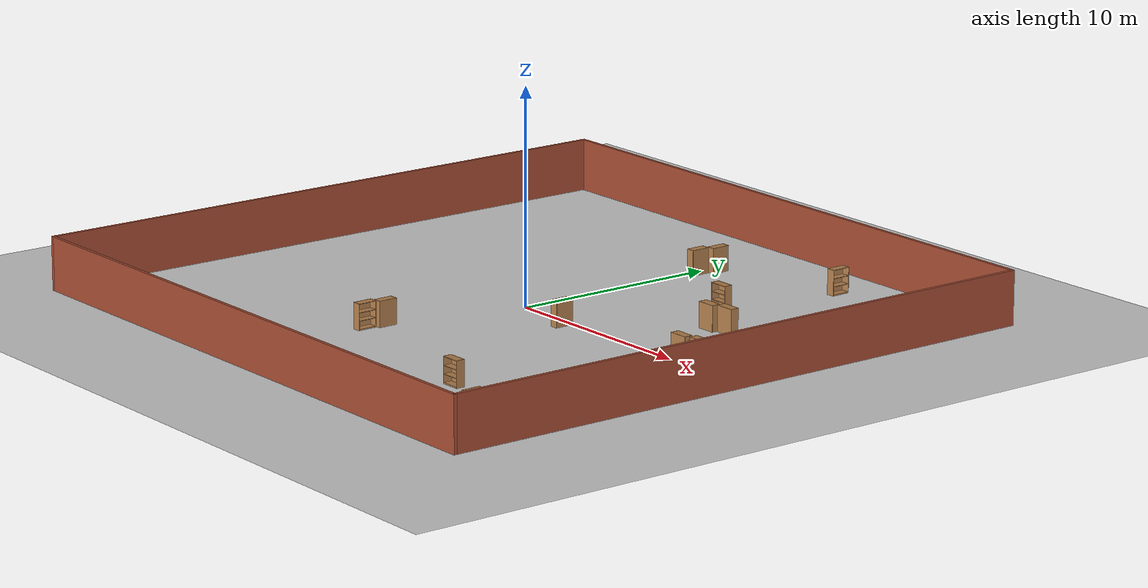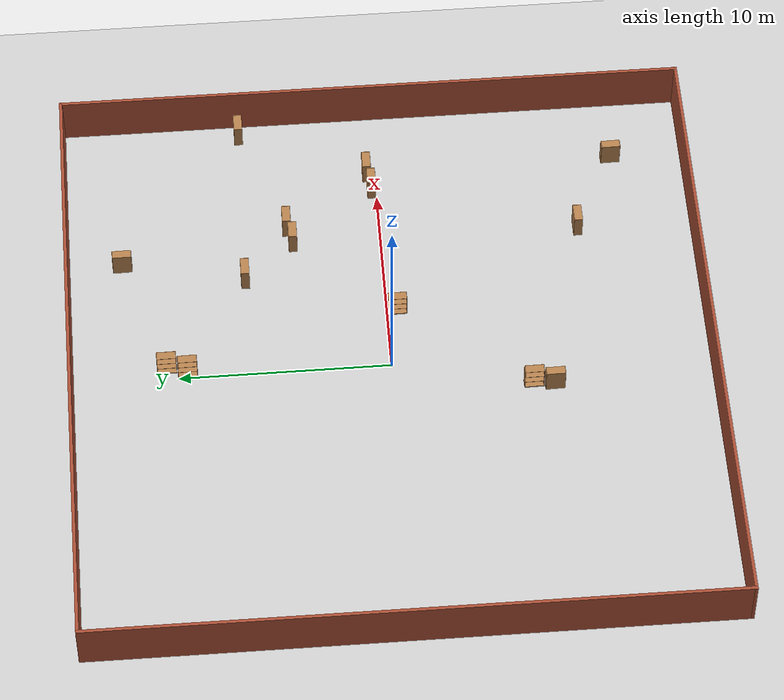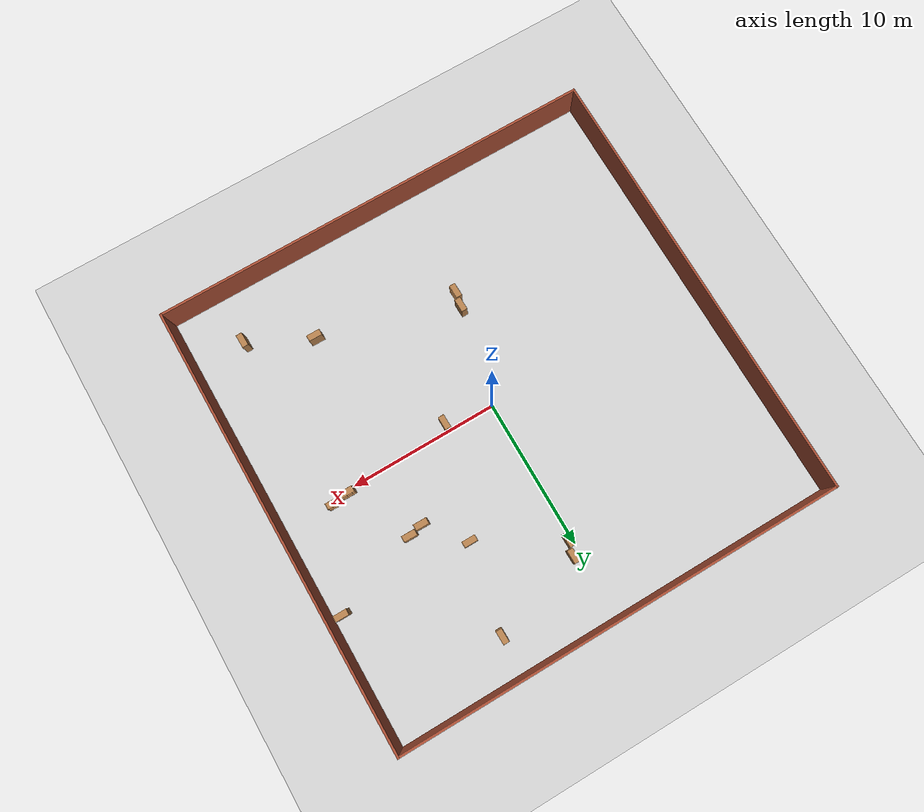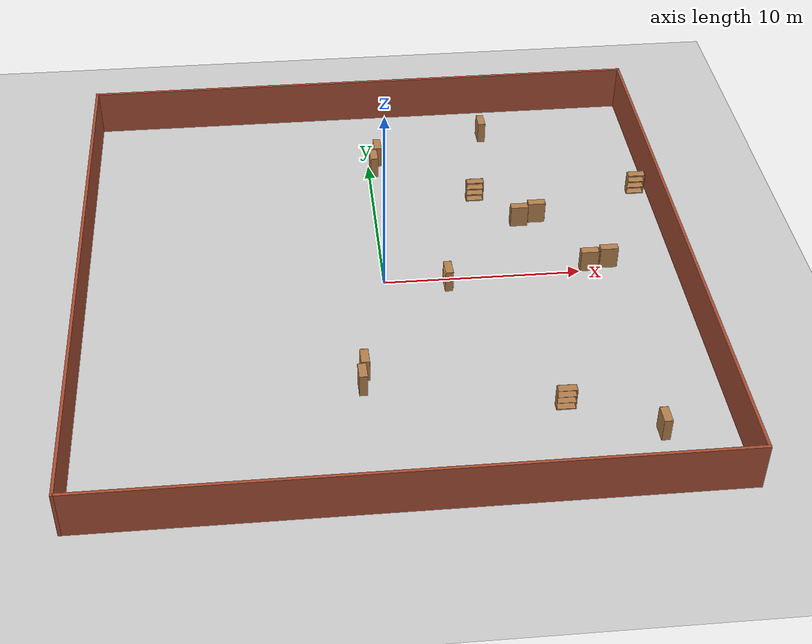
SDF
<sdf version="1.6">
 <world name="default">
  <model name="ground_plane">
   <static>1</static>
   <link name="link">
    <collision name="collision">
     <geometry><plane><normal>0 0 1</normal><size>100 100</size></plane></geometry>
     <surface>
      <contact><collide_bitmask>65535</collide_bitmask></contact>
      <friction><ode><mu>100</mu><mu2>50</mu2></ode></friction>
     </surface>
    </collision>
    <visual name="visual">
     <cast_shadows>0</cast_shadows>
     <geometry><plane><normal>0 0 1</normal><size>100 100</size></plane></geometry>
     <material>
      <script><uri>file://media/materials/scripts/gazebo.material</uri><name>Gazebo/Grey</name></script>
     </material>
    </visual>
   </link>
  </model>
  <model name="30x30env"><static>0</static><pose>32.1206 3.39752 0 0 -0 0</pose></model>
  <model name="30x30_0">
   <link name="Wall_0">
    <collision name="Wall_0_Collision">
     <geometry><box><size>30.15 0.15 2.5</size></box></geometry>
     <pose>0 0 1.25 0 -0 0</pose>
    </collision>
    <visual name="Wall_0_Visual">
     <pose>0 0 1.25 0 -0 0</pose>
     <geometry><box><size>30.15 0.15 2.5</size></box></geometry>
     <material>
      <script><uri>file://media/materials/scripts/gazebo.material</uri><name>Gazebo/Bricks</name></script>
      <ambient>1 1 1 1</ambient>
     </material>
     <meta><layer>0</layer></meta>
    </visual>
    <pose>-15 0 0 0 -0 1.5708</pose>
   </link>
   <link name="Wall_1">
    <collision name="Wall_1_Collision">
     <geometry><box><size>30.15 0.15 2.5</size></box></geometry>
     <pose>0 0 1.25 0 -0 0</pose>
    </collision>
    <visual name="Wall_1_Visual">
     <pose>0 0 1.25 0 -0 0</pose>
     <geometry><box><size>30.15 0.15 2.5</size></box></geometry>
     <material>
      <script><uri>file://media/materials/scripts/gazebo.material</uri><name>Gazebo/Bricks</name></script>
      <ambient>1 1 1 1</ambient>
     </material>
     <meta><layer>0</layer></meta>
    </visual>
    <pose>0 15 0 0 -0 0</pose>
   </link>
   <link name="Wall_2">
    <collision name="Wall_2_Collision">
     <geometry><box><size>30.15 0.15 2.5</size></box></geometry>
     <pose>0 0 1.25 0 -0 0</pose>
    </collision>
    <visual name="Wall_2_Visual">
     <pose>0 0 1.25 0 -0 0</pose>
     <geometry><box><size>30.15 0.15 2.5</size></box></geometry>
     <material>
      <script><uri>file://media/materials/scripts/gazebo.material</uri><name>Gazebo/Bricks</name></script>
      <ambient>1 1 1 1</ambient>
     </material>
     <meta><layer>0</layer></meta>
    </visual>
    <pose>15 0 0 0 -0 -1.5708</pose>
   </link>
   <link name="Wall_3">
    <collision name="Wall_3_Collision">
     <geometry><box><size>30.15 0.15 2.5</size></box></geometry>
     <pose>0 0 1.25 0 -0 0</pose>
    </collision>
    <visual name="Wall_3_Visual">
     <pose>0 0 1.25 0 -0 0</pose>
     <geometry><box><size>30.15 0.15 2.5</size></box></geometry>
     <material>
      <script><uri>file://media/materials/scripts/gazebo.material</uri><name>Gazebo/Bricks</name></script>
      <ambient>1 1 1 1</ambient>
     </material>
     <meta><layer>0</layer></meta>
    </visual>
    <pose>0 -15 0 0 -0 3.14159</pose>
   </link>
   <static>1</static>
  </model>
  <model name="bookshelf_clone_clone_clone_0_clone_0_clone_3_clone">
   <static>1</static>
   <link name="link">
    <inertial><mass>1</mass></inertial>
    <collision name="back">
     <pose>0 0.005 0.6 0 -0 0</pose>
     <geometry><box><size>0.9 0.01 1.2</size></box></geometry>
    </collision>
    <visual name="visual1">
     <pose>0 0.005 0.6 0 -0 0</pose>
     <geometry><box><size>0.9 0.01 1.2</size></box></geometry>
     <material>
      <script><uri>file://media/materials/scripts/gazebo.material</uri><name>Gazebo/Wood</name></script>
     </material>
    </visual>
    <collision name="left_side">
     <pose>0.45 -0.195 0.6 0 -0 0</pose>
     <geometry><box><size>0.02 0.4 1.2</size></box></geometry>
    </collision>
    <visual name="visual2">
     <pose>0.45 -0.195 0.6 0 -0 0</pose>
     <geometry><box><size>0.02 0.4 1.2</size></box></geometry>
     <material>
      <script><uri>file://media/materials/scripts/gazebo.material</uri><name>Gazebo/Wood</name></script>
     </material>
    </visual>
    <collision name="right_side">
     <pose>-0.45 -0.195 0.6 0 -0 0</pose>
     <geometry><box><size>0.02 0.4 1.2</size></box></geometry>
    </collision>
    <visual name="visual3">
     <pose>-0.45 -0.195 0.6 0 -0 0</pose>
     <geometry><box><size>0.02 0.4 1.2</size></box></geometry>
     <material>
      <script><uri>file://media/materials/scripts/gazebo.material</uri><name>Gazebo/Wood</name></script>
     </material>
    </visual>
    <collision name="bottom">
     <pose>0 -0.195 0.03 0 -0 0</pose>
     <geometry><box><size>0.88 0.4 0.06</size></box></geometry>
    </collision>
    <visual name="visual4">
     <pose>0 -0.195 0.03 0 -0 0</pose>
     <geometry><box><size>0.88 0.4 0.06</size></box></geometry>
     <material>
      <script><uri>file://media/materials/scripts/gazebo.material</uri><name>Gazebo/Wood</name></script>
     </material>
    </visual>
    <collision name="top">
     <pose>0 -0.195 1.19 0 -0 0</pose>
     <geometry><box><size>0.88 0.4 0.02</size></box></geometry>
    </collision>
    <visual name="visual5">
     <pose>0 -0.195 1.19 0 -0 0</pose>
     <geometry><box><size>0.88 0.4 0.02</size></box></geometry>
     <material>
      <script><uri>file://media/materials/scripts/gazebo.material</uri><name>Gazebo/Wood</name></script>
     </material>
    </visual>
    <collision name="low_shelf">
     <pose>0 -0.195 0.43 0 -0 0</pose>
     <geometry><box><size>0.88 0.4 0.02</size></box></geometry>
    </collision>
    <visual name="visual6">
     <pose>0 -0.195 0.43 0 -0 0</pose>
     <geometry><box><size>0.88 0.4 0.02</size></box></geometry>
     <material>
      <script><uri>file://media/materials/scripts/gazebo.material</uri><name>Gazebo/Wood</name></script>
     </material>
    </visual>
    <collision name="high_shelf">
     <pose>0 -0.195 0.8 0 -0 0</pose>
     <geometry><box><size>0.88 0.4 0.02</size></box></geometry>
    </collision>
    <visual name="visual7">
     <pose>0 -0.195 0.8 0 -0 0</pose>
     <geometry><box><size>0.88 0.4 0.02</size></box></geometry>
     <material>
      <script><uri>file://media/materials/scripts/gazebo.material</uri><name>Gazebo/Wood</name></script>
     </material>
    </visual>
   </link>
   <pose>14.2814 6.68434 0 0 -0 0</pose>
  </model>
  <model name="bookshelf_clone_clone_clone_0_clone_0_clone_3_clone_0_clone_0">
   <static>1</static>
   <link name="link">
    <inertial><mass>1</mass></inertial>
    <collision name="back">
     <pose>0 0.005 0.6 0 -0 0</pose>
     <geometry><box><size>0.9 0.01 1.2</size></box></geometry>
    </collision>
    <visual name="visual1">
     <pose>0 0.005 0.6 0 -0 0</pose>
     <geometry><box><size>0.9 0.01 1.2</size></box></geometry>
     <material>
      <script><uri>file://media/materials/scripts/gazebo.material</uri><name>Gazebo/Wood</name></script>
     </material>
    </visual>
    <collision name="left_side">
     <pose>0.45 -0.195 0.6 0 -0 0</pose>
     <geometry><box><size>0.02 0.4 1.2</size></box></geometry>
    </collision>
    <visual name="visual2">
     <pose>0.45 -0.195 0.6 0 -0 0</pose>
     <geometry><box><size>0.02 0.4 1.2</size></box></geometry>
     <material>
      <script><uri>file://media/materials/scripts/gazebo.material</uri><name>Gazebo/Wood</name></script>
     </material>
    </visual>
    <collision name="right_side">
     <pose>-0.45 -0.195 0.6 0 -0 0</pose>
     <geometry><box><size>0.02 0.4 1.2</size></box></geometry>
    </collision>
    <visual name="visual3">
     <pose>-0.45 -0.195 0.6 0 -0 0</pose>
     <geometry><box><size>0.02 0.4 1.2</size></box></geometry>
     <material>
      <script><uri>file://media/materials/scripts/gazebo.material</uri><name>Gazebo/Wood</name></script>
     </material>
    </visual>
    <collision name="bottom">
     <pose>0 -0.195 0.03 0 -0 0</pose>
     <geometry><box><size>0.88 0.4 0.06</size></box></geometry>
    </collision>
    <visual name="visual4">
     <pose>0 -0.195 0.03 0 -0 0</pose>
     <geometry><box><size>0.88 0.4 0.06</size></box></geometry>
     <material>
      <script><uri>file://media/materials/scripts/gazebo.material</uri><name>Gazebo/Wood</name></script>
     </material>
    </visual>
    <collision name="top">
     <pose>0 -0.195 1.19 0 -0 0</pose>
     <geometry><box><size>0.88 0.4 0.02</size></box></geometry>
    </collision>
    <visual name="visual5">
     <pose>0 -0.195 1.19 0 -0 0</pose>
     <geometry><box><size>0.88 0.4 0.02</size></box></geometry>
     <material>
      <script><uri>file://media/materials/scripts/gazebo.material</uri><name>Gazebo/Wood</name></script>
     </material>
    </visual>
    <collision name="low_shelf">
     <pose>0 -0.195 0.43 0 -0 0</pose>
     <geometry><box><size>0.88 0.4 0.02</size></box></geometry>
    </collision>
    <visual name="visual6">
     <pose>0 -0.195 0.43 0 -0 0</pose>
     <geometry><box><size>0.88 0.4 0.02</size></box></geometry>
     <material>
      <script><uri>file://media/materials/scripts/gazebo.material</uri><name>Gazebo/Wood</name></script>
     </material>
    </visual>
    <collision name="high_shelf">
     <pose>0 -0.195 0.8 0 -0 0</pose>
     <geometry><box><size>0.88 0.4 0.02</size></box></geometry>
    </collision>
    <visual name="visual7">
     <pose>0 -0.195 0.8 0 -0 0</pose>
     <geometry><box><size>0.88 0.4 0.02</size></box></geometry>
     <material>
      <script><uri>file://media/materials/scripts/gazebo.material</uri><name>Gazebo/Wood</name></script>
     </material>
    </visual>
   </link>
   <pose>6.42885 12.4053 0 0 -0 1.59147</pose>
  </model>
  <model name="bookshelf_clone_clone_clone_0_clone_0_clone_3_clone_clone_0">
   <static>1</static>
   <link name="link">
    <inertial><mass>1</mass></inertial>
    <collision name="back">
     <pose>0 0.005 0.6 0 -0 0</pose>
     <geometry><box><size>0.9 0.01 1.2</size></box></geometry>
    </collision>
    <visual name="visual1">
     <pose>0 0.005 0.6 0 -0 0</pose>
     <geometry><box><size>0.9 0.01 1.2</size></box></geometry>
     <material>
      <script><uri>file://media/materials/scripts/gazebo.material</uri><name>Gazebo/Wood</name></script>
     </material>
    </visual>
    <collision name="left_side">
     <pose>0.45 -0.195 0.6 0 -0 0</pose>
     <geometry><box><size>0.02 0.4 1.2</size></box></geometry>
    </collision>
    <visual name="visual2">
     <pose>0.45 -0.195 0.6 0 -0 0</pose>
     <geometry><box><size>0.02 0.4 1.2</size></box></geometry>
     <material>
      <script><uri>file://media/materials/scripts/gazebo.material</uri><name>Gazebo/Wood</name></script>
     </material>
    </visual>
    <collision name="right_side">
     <pose>-0.45 -0.195 0.6 0 -0 0</pose>
     <geometry><box><size>0.02 0.4 1.2</size></box></geometry>
    </collision>
    <visual name="visual3">
     <pose>-0.45 -0.195 0.6 0 -0 0</pose>
     <geometry><box><size>0.02 0.4 1.2</size></box></geometry>
     <material>
      <script><uri>file://media/materials/scripts/gazebo.material</uri><name>Gazebo/Wood</name></script>
     </material>
    </visual>
    <collision name="bottom">
     <pose>0 -0.195 0.03 0 -0 0</pose>
     <geometry><box><size>0.88 0.4 0.06</size></box></geometry>
    </collision>
    <visual name="visual4">
     <pose>0 -0.195 0.03 0 -0 0</pose>
     <geometry><box><size>0.88 0.4 0.06</size></box></geometry>
     <material>
      <script><uri>file://media/materials/scripts/gazebo.material</uri><name>Gazebo/Wood</name></script>
     </material>
    </visual>
    <collision name="top">
     <pose>0 -0.195 1.19 0 -0 0</pose>
     <geometry><box><size>0.88 0.4 0.02</size></box></geometry>
    </collision>
    <visual name="visual5">
     <pose>0 -0.195 1.19 0 -0 0</pose>
     <geometry><box><size>0.88 0.4 0.02</size></box></geometry>
     <material>
      <script><uri>file://media/materials/scripts/gazebo.material</uri><name>Gazebo/Wood</name></script>
     </material>
    </visual>
    <collision name="low_shelf">
     <pose>0 -0.195 0.43 0 -0 0</pose>
     <geometry><box><size>0.88 0.4 0.02</size></box></geometry>
    </collision>
    <visual name="visual6">
     <pose>0 -0.195 0.43 0 -0 0</pose>
     <geometry><box><size>0.88 0.4 0.02</size></box></geometry>
     <material>
      <script><uri>file://media/materials/scripts/gazebo.material</uri><name>Gazebo/Wood</name></script>
     </material>
    </visual>
    <collision name="high_shelf">
     <pose>0 -0.195 0.8 0 -0 0</pose>
     <geometry><box><size>0.88 0.4 0.02</size></box></geometry>
    </collision>
    <visual name="visual7">
     <pose>0 -0.195 0.8 0 -0 0</pose>
     <geometry><box><size>0.88 0.4 0.02</size></box></geometry>
     <material>
      <script><uri>file://media/materials/scripts/gazebo.material</uri><name>Gazebo/Wood</name></script>
     </material>
    </visual>
   </link>
   <pose>5.48865 6.80264 0 0 -0 0</pose>
  </model>
  <model name="bookshelf_clone_clone_clone_0_clone_0_clone_3_clone_clone_1_clone_clone">
   <static>1</static>
   <link name="link">
    <inertial><mass>1</mass></inertial>
    <collision name="back">
     <pose>0 0.005 0.6 0 -0 0</pose>
     <geometry><box><size>0.9 0.01 1.2</size></box></geometry>
    </collision>
    <visual name="visual1">
     <pose>0 0.005 0.6 0 -0 0</pose>
     <geometry><box><size>0.9 0.01 1.2</size></box></geometry>
     <material>
      <script><uri>file://media/materials/scripts/gazebo.material</uri><name>Gazebo/Wood</name></script>
     </material>
    </visual>
    <collision name="left_side">
     <pose>0.45 -0.195 0.6 0 -0 0</pose>
     <geometry><box><size>0.02 0.4 1.2</size></box></geometry>
    </collision>
    <visual name="visual2">
     <pose>0.45 -0.195 0.6 0 -0 0</pose>
     <geometry><box><size>0.02 0.4 1.2</size></box></geometry>
     <material>
      <script><uri>file://media/materials/scripts/gazebo.material</uri><name>Gazebo/Wood</name></script>
     </material>
    </visual>
    <collision name="right_side">
     <pose>-0.45 -0.195 0.6 0 -0 0</pose>
     <geometry><box><size>0.02 0.4 1.2</size></box></geometry>
    </collision>
    <visual name="visual3">
     <pose>-0.45 -0.195 0.6 0 -0 0</pose>
     <geometry><box><size>0.02 0.4 1.2</size></box></geometry>
     <material>
      <script><uri>file://media/materials/scripts/gazebo.material</uri><name>Gazebo/Wood</name></script>
     </material>
    </visual>
    <collision name="bottom">
     <pose>0 -0.195 0.03 0 -0 0</pose>
     <geometry><box><size>0.88 0.4 0.06</size></box></geometry>
    </collision>
    <visual name="visual4">
     <pose>0 -0.195 0.03 0 -0 0</pose>
     <geometry><box><size>0.88 0.4 0.06</size></box></geometry>
     <material>
      <script><uri>file://media/materials/scripts/gazebo.material</uri><name>Gazebo/Wood</name></script>
     </material>
    </visual>
    <collision name="top">
     <pose>0 -0.195 1.19 0 -0 0</pose>
     <geometry><box><size>0.88 0.4 0.02</size></box></geometry>
    </collision>
    <visual name="visual5">
     <pose>0 -0.195 1.19 0 -0 0</pose>
     <geometry><box><size>0.88 0.4 0.02</size></box></geometry>
     <material>
      <script><uri>file://media/materials/scripts/gazebo.material</uri><name>Gazebo/Wood</name></script>
     </material>
    </visual>
    <collision name="low_shelf">
     <pose>0 -0.195 0.43 0 -0 0</pose>
     <geometry><box><size>0.88 0.4 0.02</size></box></geometry>
    </collision>
    <visual name="visual6">
     <pose>0 -0.195 0.43 0 -0 0</pose>
     <geometry><box><size>0.88 0.4 0.02</size></box></geometry>
     <material>
      <script><uri>file://media/materials/scripts/gazebo.material</uri><name>Gazebo/Wood</name></script>
     </material>
    </visual>
    <collision name="high_shelf">
     <pose>0 -0.195 0.8 0 -0 0</pose>
     <geometry><box><size>0.88 0.4 0.02</size></box></geometry>
    </collision>
    <visual name="visual7">
     <pose>0 -0.195 0.8 0 -0 0</pose>
     <geometry><box><size>0.88 0.4 0.02</size></box></geometry>
     <material>
      <script><uri>file://media/materials/scripts/gazebo.material</uri><name>Gazebo/Wood</name></script>
     </material>
    </visual>
   </link>
   <pose>7.51774 4.03008 0 0 -0 3.1368</pose>
  </model>
  <model name="bookshelf_clone_clone_clone_0_clone_0_clone_3_clone_clone_1_clone_clone_clone">
   <static>1</static>
   <link name="link">
    <inertial><mass>1</mass></inertial>
    <collision name="back">
     <pose>0 0.005 0.6 0 -0 0</pose>
     <geometry><box><size>0.9 0.01 1.2</size></box></geometry>
    </collision>
    <visual name="visual1">
     <pose>0 0.005 0.6 0 -0 0</pose>
     <geometry><box><size>0.9 0.01 1.2</size></box></geometry>
     <material>
      <script><uri>file://media/materials/scripts/gazebo.material</uri><name>Gazebo/Wood</name></script>
     </material>
    </visual>
    <collision name="left_side">
     <pose>0.45 -0.195 0.6 0 -0 0</pose>
     <geometry><box><size>0.02 0.4 1.2</size></box></geometry>
    </collision>
    <visual name="visual2">
     <pose>0.45 -0.195 0.6 0 -0 0</pose>
     <geometry><box><size>0.02 0.4 1.2</size></box></geometry>
     <material>
      <script><uri>file://media/materials/scripts/gazebo.material</uri><name>Gazebo/Wood</name></script>
     </material>
    </visual>
    <collision name="right_side">
     <pose>-0.45 -0.195 0.6 0 -0 0</pose>
     <geometry><box><size>0.02 0.4 1.2</size></box></geometry>
    </collision>
    <visual name="visual3">
     <pose>-0.45 -0.195 0.6 0 -0 0</pose>
     <geometry><box><size>0.02 0.4 1.2</size></box></geometry>
     <material>
      <script><uri>file://media/materials/scripts/gazebo.material</uri><name>Gazebo/Wood</name></script>
     </material>
    </visual>
    <collision name="bottom">
     <pose>0 -0.195 0.03 0 -0 0</pose>
     <geometry><box><size>0.88 0.4 0.06</size></box></geometry>
    </collision>
    <visual name="visual4">
     <pose>0 -0.195 0.03 0 -0 0</pose>
     <geometry><box><size>0.88 0.4 0.06</size></box></geometry>
     <material>
      <script><uri>file://media/materials/scripts/gazebo.material</uri><name>Gazebo/Wood</name></script>
     </material>
    </visual>
    <collision name="top">
     <pose>0 -0.195 1.19 0 -0 0</pose>
     <geometry><box><size>0.88 0.4 0.02</size></box></geometry>
    </collision>
    <visual name="visual5">
     <pose>0 -0.195 1.19 0 -0 0</pose>
     <geometry><box><size>0.88 0.4 0.02</size></box></geometry>
     <material>
      <script><uri>file://media/materials/scripts/gazebo.material</uri><name>Gazebo/Wood</name></script>
     </material>
    </visual>
    <collision name="low_shelf">
     <pose>0 -0.195 0.43 0 -0 0</pose>
     <geometry><box><size>0.88 0.4 0.02</size></box></geometry>
    </collision>
    <visual name="visual6">
     <pose>0 -0.195 0.43 0 -0 0</pose>
     <geometry><box><size>0.88 0.4 0.02</size></box></geometry>
     <material>
      <script><uri>file://media/materials/scripts/gazebo.material</uri><name>Gazebo/Wood</name></script>
     </material>
    </visual>
    <collision name="high_shelf">
     <pose>0 -0.195 0.8 0 -0 0</pose>
     <geometry><box><size>0.88 0.4 0.02</size></box></geometry>
    </collision>
    <visual name="visual7">
     <pose>0 -0.195 0.8 0 -0 0</pose>
     <geometry><box><size>0.88 0.4 0.02</size></box></geometry>
     <material>
      <script><uri>file://media/materials/scripts/gazebo.material</uri><name>Gazebo/Wood</name></script>
     </material>
    </visual>
   </link>
   <pose>8.47007 4.27457 0 0 -0 3.1368</pose>
  </model>
  <model name="bookshelf_clone_clone_clone_0_clone_0_clone_3_clone_clone_1_clone_clone_clone_0">
   <static>1</static>
   <link name="link">
    <inertial><mass>1</mass></inertial>
    <collision name="back">
     <pose>0 0.005 0.6 0 -0 0</pose>
     <geometry><box><size>0.9 0.01 1.2</size></box></geometry>
    </collision>
    <visual name="visual1">
     <pose>0 0.005 0.6 0 -0 0</pose>
     <geometry><box><size>0.9 0.01 1.2</size></box></geometry>
     <material>
      <script><uri>file://media/materials/scripts/gazebo.material</uri><name>Gazebo/Wood</name></script>
     </material>
    </visual>
    <collision name="left_side">
     <pose>0.45 -0.195 0.6 0 -0 0</pose>
     <geometry><box><size>0.02 0.4 1.2</size></box></geometry>
    </collision>
    <visual name="visual2">
     <pose>0.45 -0.195 0.6 0 -0 0</pose>
     <geometry><box><size>0.02 0.4 1.2</size></box></geometry>
     <material>
      <script><uri>file://media/materials/scripts/gazebo.material</uri><name>Gazebo/Wood</name></script>
     </material>
    </visual>
    <collision name="right_side">
     <pose>-0.45 -0.195 0.6 0 -0 0</pose>
     <geometry><box><size>0.02 0.4 1.2</size></box></geometry>
    </collision>
    <visual name="visual3">
     <pose>-0.45 -0.195 0.6 0 -0 0</pose>
     <geometry><box><size>0.02 0.4 1.2</size></box></geometry>
     <material>
      <script><uri>file://media/materials/scripts/gazebo.material</uri><name>Gazebo/Wood</name></script>
     </material>
    </visual>
    <collision name="bottom">
     <pose>0 -0.195 0.03 0 -0 0</pose>
     <geometry><box><size>0.88 0.4 0.06</size></box></geometry>
    </collision>
    <visual name="visual4">
     <pose>0 -0.195 0.03 0 -0 0</pose>
     <geometry><box><size>0.88 0.4 0.06</size></box></geometry>
     <material>
      <script><uri>file://media/materials/scripts/gazebo.material</uri><name>Gazebo/Wood</name></script>
     </material>
    </visual>
    <collision name="top">
     <pose>0 -0.195 1.19 0 -0 0</pose>
     <geometry><box><size>0.88 0.4 0.02</size></box></geometry>
    </collision>
    <visual name="visual5">
     <pose>0 -0.195 1.19 0 -0 0</pose>
     <geometry><box><size>0.88 0.4 0.02</size></box></geometry>
     <material>
      <script><uri>file://media/materials/scripts/gazebo.material</uri><name>Gazebo/Wood</name></script>
     </material>
    </visual>
    <collision name="low_shelf">
     <pose>0 -0.195 0.43 0 -0 0</pose>
     <geometry><box><size>0.88 0.4 0.02</size></box></geometry>
    </collision>
    <visual name="visual6">
     <pose>0 -0.195 0.43 0 -0 0</pose>
     <geometry><box><size>0.88 0.4 0.02</size></box></geometry>
     <material>
      <script><uri>file://media/materials/scripts/gazebo.material</uri><name>Gazebo/Wood</name></script>
     </material>
    </visual>
    <collision name="high_shelf">
     <pose>0 -0.195 0.8 0 -0 0</pose>
     <geometry><box><size>0.88 0.4 0.02</size></box></geometry>
    </collision>
    <visual name="visual7">
     <pose>0 -0.195 0.8 0 -0 0</pose>
     <geometry><box><size>0.88 0.4 0.02</size></box></geometry>
     <material>
      <script><uri>file://media/materials/scripts/gazebo.material</uri><name>Gazebo/Wood</name></script>
     </material>
    </visual>
   </link>
   <pose>10.4865 0.040124 0 0 -0 3.1368</pose>
  </model>
  <model name="bookshelf_clone_clone_clone_0_clone_0_clone_3_clone_clone_1_clone_clone_clone_1">
   <static>1</static>
   <link name="link">
    <inertial><mass>1</mass></inertial>
    <collision name="back">
     <pose>0 0.005 0.6 0 -0 0</pose>
     <geometry><box><size>0.9 0.01 1.2</size></box></geometry>
    </collision>
    <visual name="visual1">
     <pose>0 0.005 0.6 0 -0 0</pose>
     <geometry><box><size>0.9 0.01 1.2</size></box></geometry>
     <material>
      <script><uri>file://media/materials/scripts/gazebo.material</uri><name>Gazebo/Wood</name></script>
     </material>
    </visual>
    <collision name="left_side">
     <pose>0.45 -0.195 0.6 0 -0 0</pose>
     <geometry><box><size>0.02 0.4 1.2</size></box></geometry>
    </collision>
    <visual name="visual2">
     <pose>0.45 -0.195 0.6 0 -0 0</pose>
     <geometry><box><size>0.02 0.4 1.2</size></box></geometry>
     <material>
      <script><uri>file://media/materials/scripts/gazebo.material</uri><name>Gazebo/Wood</name></script>
     </material>
    </visual>
    <collision name="right_side">
     <pose>-0.45 -0.195 0.6 0 -0 0</pose>
     <geometry><box><size>0.02 0.4 1.2</size></box></geometry>
    </collision>
    <visual name="visual3">
     <pose>-0.45 -0.195 0.6 0 -0 0</pose>
     <geometry><box><size>0.02 0.4 1.2</size></box></geometry>
     <material>
      <script><uri>file://media/materials/scripts/gazebo.material</uri><name>Gazebo/Wood</name></script>
     </material>
    </visual>
    <collision name="bottom">
     <pose>0 -0.195 0.03 0 -0 0</pose>
     <geometry><box><size>0.88 0.4 0.06</size></box></geometry>
    </collision>
    <visual name="visual4">
     <pose>0 -0.195 0.03 0 -0 0</pose>
     <geometry><box><size>0.88 0.4 0.06</size></box></geometry>
     <material>
      <script><uri>file://media/materials/scripts/gazebo.material</uri><name>Gazebo/Wood</name></script>
     </material>
    </visual>
    <collision name="top">
     <pose>0 -0.195 1.19 0 -0 0</pose>
     <geometry><box><size>0.88 0.4 0.02</size></box></geometry>
    </collision>
    <visual name="visual5">
     <pose>0 -0.195 1.19 0 -0 0</pose>
     <geometry><box><size>0.88 0.4 0.02</size></box></geometry>
     <material>
      <script><uri>file://media/materials/scripts/gazebo.material</uri><name>Gazebo/Wood</name></script>
     </material>
    </visual>
    <collision name="low_shelf">
     <pose>0 -0.195 0.43 0 -0 0</pose>
     <geometry><box><size>0.88 0.4 0.02</size></box></geometry>
    </collision>
    <visual name="visual6">
     <pose>0 -0.195 0.43 0 -0 0</pose>
     <geometry><box><size>0.88 0.4 0.02</size></box></geometry>
     <material>
      <script><uri>file://media/materials/scripts/gazebo.material</uri><name>Gazebo/Wood</name></script>
     </material>
    </visual>
    <collision name="high_shelf">
     <pose>0 -0.195 0.8 0 -0 0</pose>
     <geometry><box><size>0.88 0.4 0.02</size></box></geometry>
    </collision>
    <visual name="visual7">
     <pose>0 -0.195 0.8 0 -0 0</pose>
     <geometry><box><size>0.88 0.4 0.02</size></box></geometry>
     <material>
      <script><uri>file://media/materials/scripts/gazebo.material</uri><name>Gazebo/Wood</name></script>
     </material>
    </visual>
   </link>
   <pose>11.5073 0.210464 0 0 -0 3.1368</pose>
  </model>
  <model name="bookshelf_clone_clone_clone_0_clone_0_clone_3_clone_0_clone_clone_clone_clone_0">
   <static>1</static>
   <link name="link">
    <inertial><mass>1</mass></inertial>
    <collision name="back">
     <pose>0 0.005 0.6 0 -0 0</pose>
     <geometry><box><size>0.9 0.01 1.2</size></box></geometry>
    </collision>
    <visual name="visual1">
     <pose>0 0.005 0.6 0 -0 0</pose>
     <geometry><box><size>0.9 0.01 1.2</size></box></geometry>
     <material>
      <script><uri>file://media/materials/scripts/gazebo.material</uri><name>Gazebo/Wood</name></script>
     </material>
    </visual>
    <collision name="left_side">
     <pose>0.45 -0.195 0.6 0 -0 0</pose>
     <geometry><box><size>0.02 0.4 1.2</size></box></geometry>
    </collision>
    <visual name="visual2">
     <pose>0.45 -0.195 0.6 0 -0 0</pose>
     <geometry><box><size>0.02 0.4 1.2</size></box></geometry>
     <material>
      <script><uri>file://media/materials/scripts/gazebo.material</uri><name>Gazebo/Wood</name></script>
     </material>
    </visual>
    <collision name="right_side">
     <pose>-0.45 -0.195 0.6 0 -0 0</pose>
     <geometry><box><size>0.02 0.4 1.2</size></box></geometry>
    </collision>
    <visual name="visual3">
     <pose>-0.45 -0.195 0.6 0 -0 0</pose>
     <geometry><box><size>0.02 0.4 1.2</size></box></geometry>
     <material>
      <script><uri>file://media/materials/scripts/gazebo.material</uri><name>Gazebo/Wood</name></script>
     </material>
    </visual>
    <collision name="bottom">
     <pose>0 -0.195 0.03 0 -0 0</pose>
     <geometry><box><size>0.88 0.4 0.06</size></box></geometry>
    </collision>
    <visual name="visual4">
     <pose>0 -0.195 0.03 0 -0 0</pose>
     <geometry><box><size>0.88 0.4 0.06</size></box></geometry>
     <material>
      <script><uri>file://media/materials/scripts/gazebo.material</uri><name>Gazebo/Wood</name></script>
     </material>
    </visual>
    <collision name="top">
     <pose>0 -0.195 1.19 0 -0 0</pose>
     <geometry><box><size>0.88 0.4 0.02</size></box></geometry>
    </collision>
    <visual name="visual5">
     <pose>0 -0.195 1.19 0 -0 0</pose>
     <geometry><box><size>0.88 0.4 0.02</size></box></geometry>
     <material>
      <script><uri>file://media/materials/scripts/gazebo.material</uri><name>Gazebo/Wood</name></script>
     </material>
    </visual>
    <collision name="low_shelf">
     <pose>0 -0.195 0.43 0 -0 0</pose>
     <geometry><box><size>0.88 0.4 0.02</size></box></geometry>
    </collision>
    <visual name="visual6">
     <pose>0 -0.195 0.43 0 -0 0</pose>
     <geometry><box><size>0.88 0.4 0.02</size></box></geometry>
     <material>
      <script><uri>file://media/materials/scripts/gazebo.material</uri><name>Gazebo/Wood</name></script>
     </material>
    </visual>
    <collision name="high_shelf">
     <pose>0 -0.195 0.8 0 -0 0</pose>
     <geometry><box><size>0.88 0.4 0.02</size></box></geometry>
    </collision>
    <visual name="visual7">
     <pose>0 -0.195 0.8 0 -0 0</pose>
     <geometry><box><size>0.88 0.4 0.02</size></box></geometry>
     <material>
      <script><uri>file://media/materials/scripts/gazebo.material</uri><name>Gazebo/Wood</name></script>
     </material>
    </visual>
   </link>
   <pose>11.3706 -11.5079 0 0 -0 1.59147</pose>
  </model>
  <model name="bookshelf_clone_clone_clone_0_clone_0_clone_3_clone_clone_2">
   <static>1</static>
   <link name="link">
    <inertial><mass>1</mass></inertial>
    <collision name="back">
     <pose>0 0.005 0.6 0 -0 0</pose>
     <geometry><box><size>0.9 0.01 1.2</size></box></geometry>
    </collision>
    <visual name="visual1">
     <pose>0 0.005 0.6 0 -0 0</pose>
     <geometry><box><size>0.9 0.01 1.2</size></box></geometry>
     <material>
      <script><uri>file://media/materials/scripts/gazebo.material</uri><name>Gazebo/Wood</name></script>
     </material>
    </visual>
    <collision name="left_side">
     <pose>0.45 -0.195 0.6 0 -0 0</pose>
     <geometry><box><size>0.02 0.4 1.2</size></box></geometry>
    </collision>
    <visual name="visual2">
     <pose>0.45 -0.195 0.6 0 -0 0</pose>
     <geometry><box><size>0.02 0.4 1.2</size></box></geometry>
     <material>
      <script><uri>file://media/materials/scripts/gazebo.material</uri><name>Gazebo/Wood</name></script>
     </material>
    </visual>
    <collision name="right_side">
     <pose>-0.45 -0.195 0.6 0 -0 0</pose>
     <geometry><box><size>0.02 0.4 1.2</size></box></geometry>
    </collision>
    <visual name="visual3">
     <pose>-0.45 -0.195 0.6 0 -0 0</pose>
     <geometry><box><size>0.02 0.4 1.2</size></box></geometry>
     <material>
      <script><uri>file://media/materials/scripts/gazebo.material</uri><name>Gazebo/Wood</name></script>
     </material>
    </visual>
    <collision name="bottom">
     <pose>0 -0.195 0.03 0 -0 0</pose>
     <geometry><box><size>0.88 0.4 0.06</size></box></geometry>
    </collision>
    <visual name="visual4">
     <pose>0 -0.195 0.03 0 -0 0</pose>
     <geometry><box><size>0.88 0.4 0.06</size></box></geometry>
     <material>
      <script><uri>file://media/materials/scripts/gazebo.material</uri><name>Gazebo/Wood</name></script>
     </material>
    </visual>
    <collision name="top">
     <pose>0 -0.195 1.19 0 -0 0</pose>
     <geometry><box><size>0.88 0.4 0.02</size></box></geometry>
    </collision>
    <visual name="visual5">
     <pose>0 -0.195 1.19 0 -0 0</pose>
     <geometry><box><size>0.88 0.4 0.02</size></box></geometry>
     <material>
      <script><uri>file://media/materials/scripts/gazebo.material</uri><name>Gazebo/Wood</name></script>
     </material>
    </visual>
    <collision name="low_shelf">
     <pose>0 -0.195 0.43 0 -0 0</pose>
     <geometry><box><size>0.88 0.4 0.02</size></box></geometry>
    </collision>
    <visual name="visual6">
     <pose>0 -0.195 0.43 0 -0 0</pose>
     <geometry><box><size>0.88 0.4 0.02</size></box></geometry>
     <material>
      <script><uri>file://media/materials/scripts/gazebo.material</uri><name>Gazebo/Wood</name></script>
     </material>
    </visual>
    <collision name="high_shelf">
     <pose>0 -0.195 0.8 0 -0 0</pose>
     <geometry><box><size>0.88 0.4 0.02</size></box></geometry>
    </collision>
    <visual name="visual7">
     <pose>0 -0.195 0.8 0 -0 0</pose>
     <geometry><box><size>0.88 0.4 0.02</size></box></geometry>
     <material>
      <script><uri>file://media/materials/scripts/gazebo.material</uri><name>Gazebo/Wood</name></script>
     </material>
    </visual>
   </link>
   <pose>7.48796 -9.28472 0 0 -0 0</pose>
  </model>
  <model name="bookshelf_clone_clone_clone_0_clone_0_clone_3_clone_0_clone_clone_clone_clone_clone_clone">
   <static>1</static>
   <link name="link">
    <inertial><mass>1</mass></inertial>
    <collision name="back">
     <pose>0 0.005 0.6 0 -0 0</pose>
     <geometry><box><size>0.9 0.01 1.2</size></box></geometry>
    </collision>
    <visual name="visual1">
     <pose>0 0.005 0.6 0 -0 0</pose>
     <geometry><box><size>0.9 0.01 1.2</size></box></geometry>
     <material>
      <script><uri>file://media/materials/scripts/gazebo.material</uri><name>Gazebo/Wood</name></script>
     </material>
    </visual>
    <collision name="left_side">
     <pose>0.45 -0.195 0.6 0 -0 0</pose>
     <geometry><box><size>0.02 0.4 1.2</size></box></geometry>
    </collision>
    <visual name="visual2">
     <pose>0.45 -0.195 0.6 0 -0 0</pose>
     <geometry><box><size>0.02 0.4 1.2</size></box></geometry>
     <material>
      <script><uri>file://media/materials/scripts/gazebo.material</uri><name>Gazebo/Wood</name></script>
     </material>
    </visual>
    <collision name="right_side">
     <pose>-0.45 -0.195 0.6 0 -0 0</pose>
     <geometry><box><size>0.02 0.4 1.2</size></box></geometry>
    </collision>
    <visual name="visual3">
     <pose>-0.45 -0.195 0.6 0 -0 0</pose>
     <geometry><box><size>0.02 0.4 1.2</size></box></geometry>
     <material>
      <script><uri>file://media/materials/scripts/gazebo.material</uri><name>Gazebo/Wood</name></script>
     </material>
    </visual>
    <collision name="bottom">
     <pose>0 -0.195 0.03 0 -0 0</pose>
     <geometry><box><size>0.88 0.4 0.06</size></box></geometry>
    </collision>
    <visual name="visual4">
     <pose>0 -0.195 0.03 0 -0 0</pose>
     <geometry><box><size>0.88 0.4 0.06</size></box></geometry>
     <material>
      <script><uri>file://media/materials/scripts/gazebo.material</uri><name>Gazebo/Wood</name></script>
     </material>
    </visual>
    <collision name="top">
     <pose>0 -0.195 1.19 0 -0 0</pose>
     <geometry><box><size>0.88 0.4 0.02</size></box></geometry>
    </collision>
    <visual name="visual5">
     <pose>0 -0.195 1.19 0 -0 0</pose>
     <geometry><box><size>0.88 0.4 0.02</size></box></geometry>
     <material>
      <script><uri>file://media/materials/scripts/gazebo.material</uri><name>Gazebo/Wood</name></script>
     </material>
    </visual>
    <collision name="low_shelf">
     <pose>0 -0.195 0.43 0 -0 0</pose>
     <geometry><box><size>0.88 0.4 0.02</size></box></geometry>
    </collision>
    <visual name="visual6">
     <pose>0 -0.195 0.43 0 -0 0</pose>
     <geometry><box><size>0.88 0.4 0.02</size></box></geometry>
     <material>
      <script><uri>file://media/materials/scripts/gazebo.material</uri><name>Gazebo/Wood</name></script>
     </material>
    </visual>
    <collision name="high_shelf">
     <pose>0 -0.195 0.8 0 -0 0</pose>
     <geometry><box><size>0.88 0.4 0.02</size></box></geometry>
    </collision>
    <visual name="visual7">
     <pose>0 -0.195 0.8 0 -0 0</pose>
     <geometry><box><size>0.88 0.4 0.02</size></box></geometry>
     <material>
      <script><uri>file://media/materials/scripts/gazebo.material</uri><name>Gazebo/Wood</name></script>
     </material>
    </visual>
   </link>
   <pose>3.36575 -0.464775 0 0 0 -1.55111</pose>
  </model>
  <model name="bookshelf_clone_clone_clone_0_clone_0_clone_3_clone_0_clone_clone_clone_clone_clone_clone_clone_clone">
   <static>1</static>
   <link name="link">
    <inertial><mass>1</mass></inertial>
    <collision name="back">
     <pose>0 0.005 0.6 0 -0 0</pose>
     <geometry><box><size>0.9 0.01 1.2</size></box></geometry>
    </collision>
    <visual name="visual1">
     <pose>0 0.005 0.6 0 -0 0</pose>
     <geometry><box><size>0.9 0.01 1.2</size></box></geometry>
     <material>
      <script><uri>file://media/materials/scripts/gazebo.material</uri><name>Gazebo/Wood</name></script>
     </material>
    </visual>
    <collision name="left_side">
     <pose>0.45 -0.195 0.6 0 -0 0</pose>
     <geometry><box><size>0.02 0.4 1.2</size></box></geometry>
    </collision>
    <visual name="visual2">
     <pose>0.45 -0.195 0.6 0 -0 0</pose>
     <geometry><box><size>0.02 0.4 1.2</size></box></geometry>
     <material>
      <script><uri>file://media/materials/scripts/gazebo.material</uri><name>Gazebo/Wood</name></script>
     </material>
    </visual>
    <collision name="right_side">
     <pose>-0.45 -0.195 0.6 0 -0 0</pose>
     <geometry><box><size>0.02 0.4 1.2</size></box></geometry>
    </collision>
    <visual name="visual3">
     <pose>-0.45 -0.195 0.6 0 -0 0</pose>
     <geometry><box><size>0.02 0.4 1.2</size></box></geometry>
     <material>
      <script><uri>file://media/materials/scripts/gazebo.material</uri><name>Gazebo/Wood</name></script>
     </material>
    </visual>
    <collision name="bottom">
     <pose>0 -0.195 0.03 0 -0 0</pose>
     <geometry><box><size>0.88 0.4 0.06</size></box></geometry>
    </collision>
    <visual name="visual4">
     <pose>0 -0.195 0.03 0 -0 0</pose>
     <geometry><box><size>0.88 0.4 0.06</size></box></geometry>
     <material>
      <script><uri>file://media/materials/scripts/gazebo.material</uri><name>Gazebo/Wood</name></script>
     </material>
    </visual>
    <collision name="top">
     <pose>0 -0.195 1.19 0 -0 0</pose>
     <geometry><box><size>0.88 0.4 0.02</size></box></geometry>
    </collision>
    <visual name="visual5">
     <pose>0 -0.195 1.19 0 -0 0</pose>
     <geometry><box><size>0.88 0.4 0.02</size></box></geometry>
     <material>
      <script><uri>file://media/materials/scripts/gazebo.material</uri><name>Gazebo/Wood</name></script>
     </material>
    </visual>
    <collision name="low_shelf">
     <pose>0 -0.195 0.43 0 -0 0</pose>
     <geometry><box><size>0.88 0.4 0.02</size></box></geometry>
    </collision>
    <visual name="visual6">
     <pose>0 -0.195 0.43 0 -0 0</pose>
     <geometry><box><size>0.88 0.4 0.02</size></box></geometry>
     <material>
      <script><uri>file://media/materials/scripts/gazebo.material</uri><name>Gazebo/Wood</name></script>
     </material>
    </visual>
    <collision name="high_shelf">
     <pose>0 -0.195 0.8 0 -0 0</pose>
     <geometry><box><size>0.88 0.4 0.02</size></box></geometry>
    </collision>
    <visual name="visual7">
     <pose>0 -0.195 0.8 0 -0 0</pose>
     <geometry><box><size>0.88 0.4 0.02</size></box></geometry>
     <material>
      <script><uri>file://media/materials/scripts/gazebo.material</uri><name>Gazebo/Wood</name></script>
     </material>
    </visual>
   </link>
   <pose>0.461987 9.57614 0 0 0 -1.55111</pose>
  </model>
  <model name="bookshelf_clone_clone_clone_0_clone_0_clone_3_clone_0_clone_clone_clone_clone_clone_clone_clone_clone_0">
   <static>1</static>
   <link name="link">
    <inertial><mass>1</mass></inertial>
    <collision name="back">
     <pose>0 0.005 0.6 0 -0 0</pose>
     <geometry><box><size>0.9 0.01 1.2</size></box></geometry>
    </collision>
    <visual name="visual1">
     <pose>0 0.005 0.6 0 -0 0</pose>
     <geometry><box><size>0.9 0.01 1.2</size></box></geometry>
     <material>
      <script><uri>file://media/materials/scripts/gazebo.material</uri><name>Gazebo/Wood</name></script>
     </material>
    </visual>
    <collision name="left_side">
     <pose>0.45 -0.195 0.6 0 -0 0</pose>
     <geometry><box><size>0.02 0.4 1.2</size></box></geometry>
    </collision>
    <visual name="visual2">
     <pose>0.45 -0.195 0.6 0 -0 0</pose>
     <geometry><box><size>0.02 0.4 1.2</size></box></geometry>
     <material>
      <script><uri>file://media/materials/scripts/gazebo.material</uri><name>Gazebo/Wood</name></script>
     </material>
    </visual>
    <collision name="right_side">
     <pose>-0.45 -0.195 0.6 0 -0 0</pose>
     <geometry><box><size>0.02 0.4 1.2</size></box></geometry>
    </collision>
    <visual name="visual3">
     <pose>-0.45 -0.195 0.6 0 -0 0</pose>
     <geometry><box><size>0.02 0.4 1.2</size></box></geometry>
     <material>
      <script><uri>file://media/materials/scripts/gazebo.material</uri><name>Gazebo/Wood</name></script>
     </material>
    </visual>
    <collision name="bottom">
     <pose>0 -0.195 0.03 0 -0 0</pose>
     <geometry><box><size>0.88 0.4 0.06</size></box></geometry>
    </collision>
    <visual name="visual4">
     <pose>0 -0.195 0.03 0 -0 0</pose>
     <geometry><box><size>0.88 0.4 0.06</size></box></geometry>
     <material>
      <script><uri>file://media/materials/scripts/gazebo.material</uri><name>Gazebo/Wood</name></script>
     </material>
    </visual>
    <collision name="top">
     <pose>0 -0.195 1.19 0 -0 0</pose>
     <geometry><box><size>0.88 0.4 0.02</size></box></geometry>
    </collision>
    <visual name="visual5">
     <pose>0 -0.195 1.19 0 -0 0</pose>
     <geometry><box><size>0.88 0.4 0.02</size></box></geometry>
     <material>
      <script><uri>file://media/materials/scripts/gazebo.material</uri><name>Gazebo/Wood</name></script>
     </material>
    </visual>
    <collision name="low_shelf">
     <pose>0 -0.195 0.43 0 -0 0</pose>
     <geometry><box><size>0.88 0.4 0.02</size></box></geometry>
    </collision>
    <visual name="visual6">
     <pose>0 -0.195 0.43 0 -0 0</pose>
     <geometry><box><size>0.88 0.4 0.02</size></box></geometry>
     <material>
      <script><uri>file://media/materials/scripts/gazebo.material</uri><name>Gazebo/Wood</name></script>
     </material>
    </visual>
    <collision name="high_shelf">
     <pose>0 -0.195 0.8 0 -0 0</pose>
     <geometry><box><size>0.88 0.4 0.02</size></box></geometry>
    </collision>
    <visual name="visual7">
     <pose>0 -0.195 0.8 0 -0 0</pose>
     <geometry><box><size>0.88 0.4 0.02</size></box></geometry>
     <material>
      <script><uri>file://media/materials/scripts/gazebo.material</uri><name>Gazebo/Wood</name></script>
     </material>
    </visual>
   </link>
   <pose>0.730305 10.5409 0 0 0 -1.55111</pose>
  </model>
  <model name="bookshelf_clone_clone_clone_0_clone_0_clone_3_clone_0_clone_clone_clone_clone_clone_clone_clone_clone_1">
   <static>1</static>
   <link name="link">
    <inertial><mass>1</mass></inertial>
    <collision name="back">
     <pose>0 0.005 0.6 0 -0 0</pose>
     <geometry><box><size>0.9 0.01 1.2</size></box></geometry>
    </collision>
    <visual name="visual1">
     <pose>0 0.005 0.6 0 -0 0</pose>
     <geometry><box><size>0.9 0.01 1.2</size></box></geometry>
     <material>
      <script><uri>file://media/materials/scripts/gazebo.material</uri><name>Gazebo/Wood</name></script>
     </material>
    </visual>
    <collision name="left_side">
     <pose>0.45 -0.195 0.6 0 -0 0</pose>
     <geometry><box><size>0.02 0.4 1.2</size></box></geometry>
    </collision>
    <visual name="visual2">
     <pose>0.45 -0.195 0.6 0 -0 0</pose>
     <geometry><box><size>0.02 0.4 1.2</size></box></geometry>
     <material>
      <script><uri>file://media/materials/scripts/gazebo.material</uri><name>Gazebo/Wood</name></script>
     </material>
    </visual>
    <collision name="right_side">
     <pose>-0.45 -0.195 0.6 0 -0 0</pose>
     <geometry><box><size>0.02 0.4 1.2</size></box></geometry>
    </collision>
    <visual name="visual3">
     <pose>-0.45 -0.195 0.6 0 -0 0</pose>
     <geometry><box><size>0.02 0.4 1.2</size></box></geometry>
     <material>
      <script><uri>file://media/materials/scripts/gazebo.material</uri><name>Gazebo/Wood</name></script>
     </material>
    </visual>
    <collision name="bottom">
     <pose>0 -0.195 0.03 0 -0 0</pose>
     <geometry><box><size>0.88 0.4 0.06</size></box></geometry>
    </collision>
    <visual name="visual4">
     <pose>0 -0.195 0.03 0 -0 0</pose>
     <geometry><box><size>0.88 0.4 0.06</size></box></geometry>
     <material>
      <script><uri>file://media/materials/scripts/gazebo.material</uri><name>Gazebo/Wood</name></script>
     </material>
    </visual>
    <collision name="top">
     <pose>0 -0.195 1.19 0 -0 0</pose>
     <geometry><box><size>0.88 0.4 0.02</size></box></geometry>
    </collision>
    <visual name="visual5">
     <pose>0 -0.195 1.19 0 -0 0</pose>
     <geometry><box><size>0.88 0.4 0.02</size></box></geometry>
     <material>
      <script><uri>file://media/materials/scripts/gazebo.material</uri><name>Gazebo/Wood</name></script>
     </material>
    </visual>
    <collision name="low_shelf">
     <pose>0 -0.195 0.43 0 -0 0</pose>
     <geometry><box><size>0.88 0.4 0.02</size></box></geometry>
    </collision>
    <visual name="visual6">
     <pose>0 -0.195 0.43 0 -0 0</pose>
     <geometry><box><size>0.88 0.4 0.02</size></box></geometry>
     <material>
      <script><uri>file://media/materials/scripts/gazebo.material</uri><name>Gazebo/Wood</name></script>
     </material>
    </visual>
    <collision name="high_shelf">
     <pose>0 -0.195 0.8 0 -0 0</pose>
     <geometry><box><size>0.88 0.4 0.02</size></box></geometry>
    </collision>
    <visual name="visual7">
     <pose>0 -0.195 0.8 0 -0 0</pose>
     <geometry><box><size>0.88 0.4 0.02</size></box></geometry>
     <material>
      <script><uri>file://media/materials/scripts/gazebo.material</uri><name>Gazebo/Wood</name></script>
     </material>
    </visual>
   </link>
   <pose>-1.31644 -6.51789 0 0 0 -1.55111</pose>
  </model>
  <model name="bookshelf_clone_clone_clone_0_clone_0_clone_3_clone_0_clone_clone_clone_clone_0_clone_clone_clone_0_clone">
   <static>1</static>
   <link name="link">
    <inertial><mass>1</mass></inertial>
    <collision name="back">
     <pose>0 0.005 0.6 0 -0 0</pose>
     <geometry><box><size>0.9 0.01 1.2</size></box></geometry>
    </collision>
    <visual name="visual1">
     <pose>0 0.005 0.6 0 -0 0</pose>
     <geometry><box><size>0.9 0.01 1.2</size></box></geometry>
     <material>
      <script><uri>file://media/materials/scripts/gazebo.material</uri><name>Gazebo/Wood</name></script>
     </material>
    </visual>
    <collision name="left_side">
     <pose>0.45 -0.195 0.6 0 -0 0</pose>
     <geometry><box><size>0.02 0.4 1.2</size></box></geometry>
    </collision>
    <visual name="visual2">
     <pose>0.45 -0.195 0.6 0 -0 0</pose>
     <geometry><box><size>0.02 0.4 1.2</size></box></geometry>
     <material>
      <script><uri>file://media/materials/scripts/gazebo.material</uri><name>Gazebo/Wood</name></script>
     </material>
    </visual>
    <collision name="right_side">
     <pose>-0.45 -0.195 0.6 0 -0 0</pose>
     <geometry><box><size>0.02 0.4 1.2</size></box></geometry>
    </collision>
    <visual name="visual3">
     <pose>-0.45 -0.195 0.6 0 -0 0</pose>
     <geometry><box><size>0.02 0.4 1.2</size></box></geometry>
     <material>
      <script><uri>file://media/materials/scripts/gazebo.material</uri><name>Gazebo/Wood</name></script>
     </material>
    </visual>
    <collision name="bottom">
     <pose>0 -0.195 0.03 0 -0 0</pose>
     <geometry><box><size>0.88 0.4 0.06</size></box></geometry>
    </collision>
    <visual name="visual4">
     <pose>0 -0.195 0.03 0 -0 0</pose>
     <geometry><box><size>0.88 0.4 0.06</size></box></geometry>
     <material>
      <script><uri>file://media/materials/scripts/gazebo.material</uri><name>Gazebo/Wood</name></script>
     </material>
    </visual>
    <collision name="top">
     <pose>0 -0.195 1.19 0 -0 0</pose>
     <geometry><box><size>0.88 0.4 0.02</size></box></geometry>
    </collision>
    <visual name="visual5">
     <pose>0 -0.195 1.19 0 -0 0</pose>
     <geometry><box><size>0.88 0.4 0.02</size></box></geometry>
     <material>
      <script><uri>file://media/materials/scripts/gazebo.material</uri><name>Gazebo/Wood</name></script>
     </material>
    </visual>
    <collision name="low_shelf">
     <pose>0 -0.195 0.43 0 -0 0</pose>
     <geometry><box><size>0.88 0.4 0.02</size></box></geometry>
    </collision>
    <visual name="visual6">
     <pose>0 -0.195 0.43 0 -0 0</pose>
     <geometry><box><size>0.88 0.4 0.02</size></box></geometry>
     <material>
      <script><uri>file://media/materials/scripts/gazebo.material</uri><name>Gazebo/Wood</name></script>
     </material>
    </visual>
    <collision name="high_shelf">
     <pose>0 -0.195 0.8 0 -0 0</pose>
     <geometry><box><size>0.88 0.4 0.02</size></box></geometry>
    </collision>
    <visual name="visual7">
     <pose>0 -0.195 0.8 0 -0 0</pose>
     <geometry><box><size>0.88 0.4 0.02</size></box></geometry>
     <material>
      <script><uri>file://media/materials/scripts/gazebo.material</uri><name>Gazebo/Wood</name></script>
     </material>
    </visual>
   </link>
   <pose>-1.87671 -7.49538 0 0 -0 1.59147</pose>
  </model>
 </world>
</sdf>
